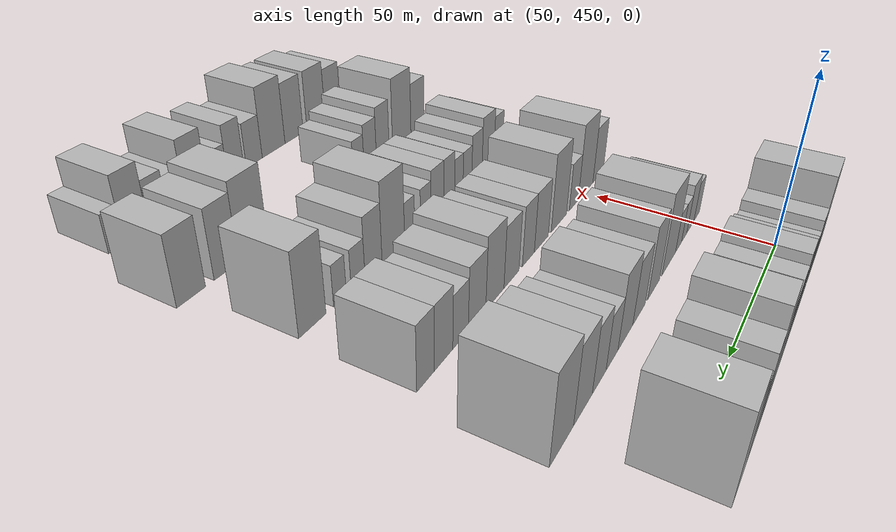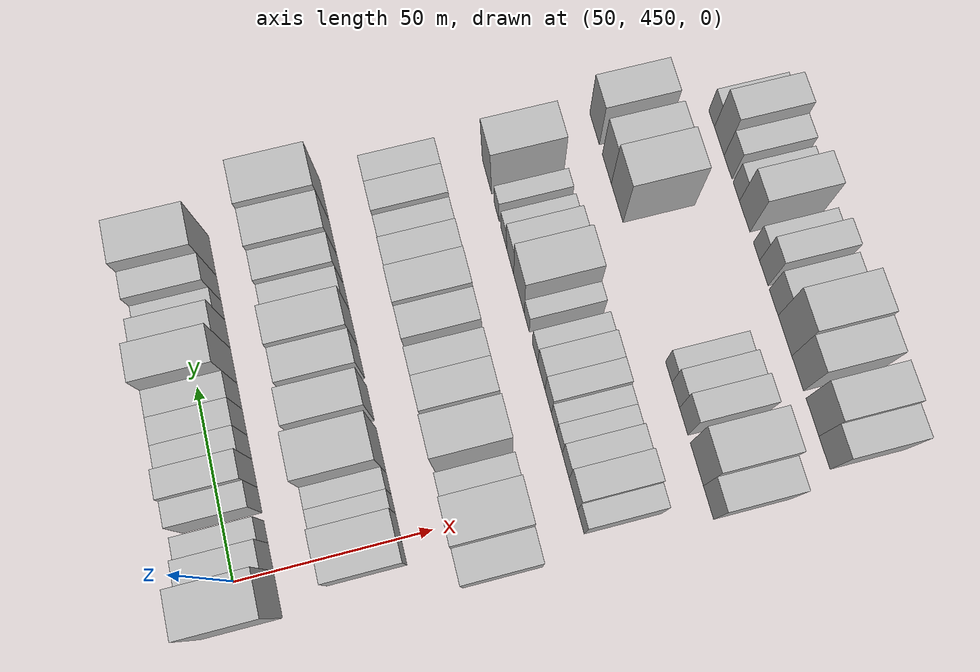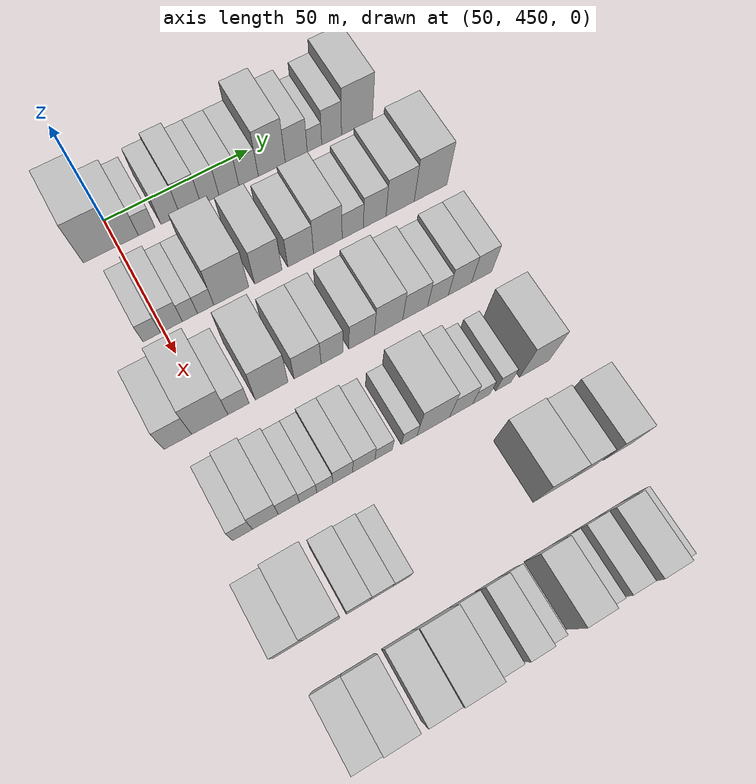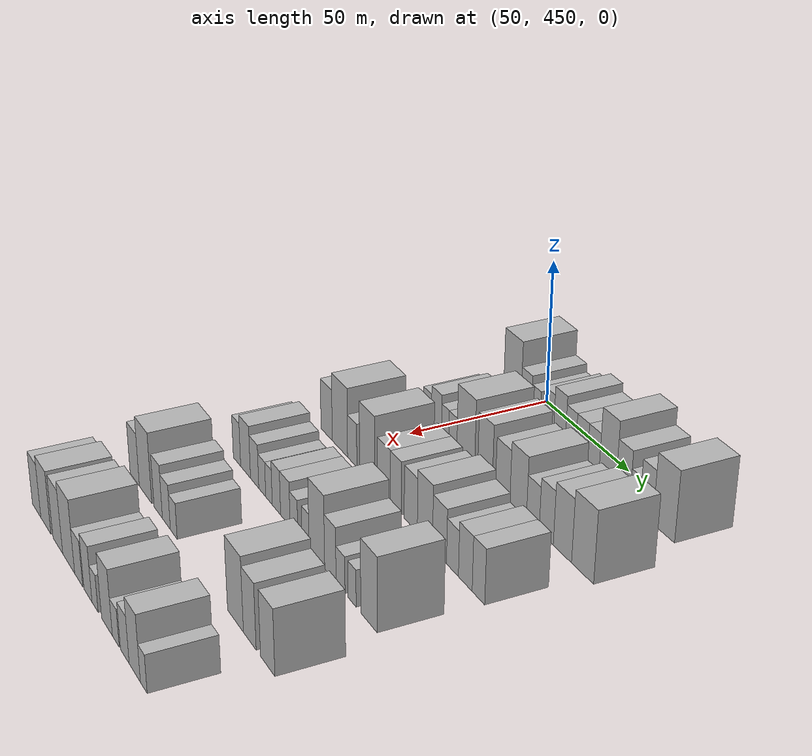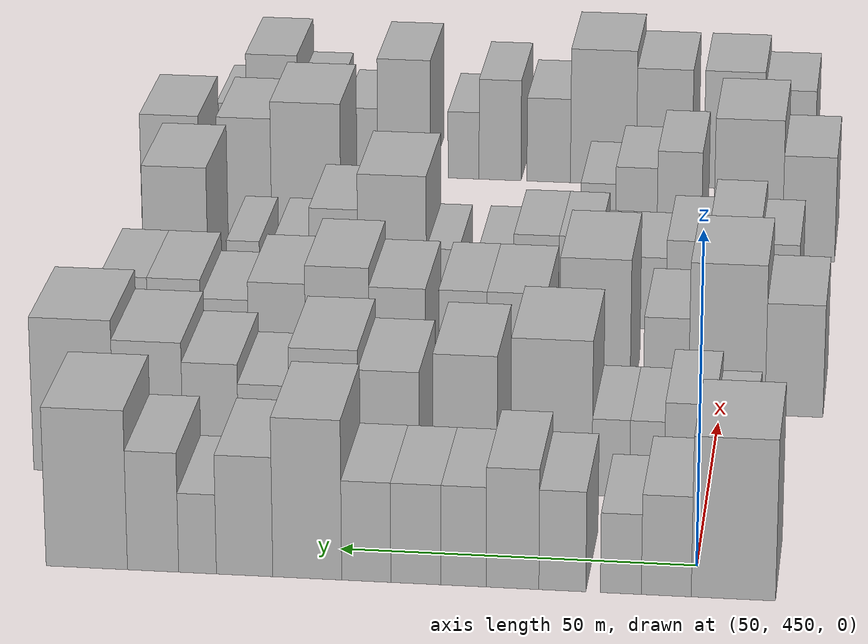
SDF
<sdf version="1.6">
 <world name="default">
  <model name="building_112">
   <static>1</static>
   <pose>50.0000 444.3973 0 0.000000 0.000000 0.000000</pose>
   <link name="link">
    <pose>0 0 12.00 0 0 0</pose>
    <collision name="collision"><geometry><box><size>20.0000 11.5505 24.0000</size></box></geometry></collision>
    <visual name="visual">
     <cast_shadows>0</cast_shadows>
     <geometry><box><size>20.0000 11.5505 24.0000</size></box></geometry>
     <material>
      <script>
       <uri>model://HANNAS_wall/materials/scripts</uri>
       <uri>model://HANNAS_wall/materials/textures</uri>
       <name>vrc/HANNAS_wall</name>
      </script>
     </material>
    </visual>
   </link>
  </model>
  <model name="building_113">
   <static>1</static>
   <pose>50.0000 453.6075 0 0.000000 0.000000 0.000000</pose>
   <link name="link">
    <pose>0 0 7.50 0 0 0</pose>
    <collision name="collision"><geometry><box><size>20.0000 6.8697 15.0000</size></box></geometry></collision>
    <visual name="visual">
     <cast_shadows>0</cast_shadows>
     <geometry><box><size>20.0000 6.8697 15.0000</size></box></geometry>
     <material>
      <script>
       <uri>model://HANNAS_wall/materials/scripts</uri>
       <uri>model://HANNAS_wall/materials/textures</uri>
       <name>vrc/HANNAS_wall</name>
      </script>
     </material>
    </visual>
   </link>
  </model>
  <model name="building_114">
   <static>1</static>
   <pose>50.0000 459.8554 0 0.000000 0.000000 0.000000</pose>
   <link name="link">
    <pose>0 0 6.00 0 0 0</pose>
    <collision name="collision"><geometry><box><size>20.0000 5.6261 12.0000</size></box></geometry></collision>
    <visual name="visual">
     <cast_shadows>0</cast_shadows>
     <geometry><box><size>20.0000 5.6261 12.0000</size></box></geometry>
     <material>
      <script>
       <uri>model://HANNAS_wall/materials/scripts</uri>
       <uri>model://HANNAS_wall/materials/textures</uri>
       <name>vrc/HANNAS_wall</name>
      </script>
     </material>
    </visual>
   </link>
  </model>
  <model name="building_115">
   <static>1</static>
   <pose>50.0000 467.9086 0 0.000000 0.000000 0.000000</pose>
   <link name="link">
    <pose>0 0 7.50 0 0 0</pose>
    <collision name="collision"><geometry><box><size>20.0000 6.4802 15.0000</size></box></geometry></collision>
    <visual name="visual">
     <cast_shadows>0</cast_shadows>
     <geometry><box><size>20.0000 6.4802 15.0000</size></box></geometry>
     <material>
      <script>
       <uri>model://HANNAS_wall/materials/scripts</uri>
       <uri>model://HANNAS_wall/materials/textures</uri>
       <name>vrc/HANNAS_wall</name>
      </script>
     </material>
    </visual>
   </link>
  </model>
  <model name="building_116">
   <static>1</static>
   <pose>50.0000 474.7819 0 0.000000 0.000000 0.000000</pose>
   <link name="link">
    <pose>0 0 9.00 0 0 0</pose>
    <collision name="collision"><geometry><box><size>20.0000 7.2665 18.0000</size></box></geometry></collision>
    <visual name="visual">
     <cast_shadows>0</cast_shadows>
     <geometry><box><size>20.0000 7.2665 18.0000</size></box></geometry>
     <material>
      <script>
       <uri>model://HANNAS_wall/materials/scripts</uri>
       <uri>model://HANNAS_wall/materials/textures</uri>
       <name>vrc/HANNAS_wall</name>
      </script>
     </material>
    </visual>
   </link>
  </model>
  <model name="building_117">
   <static>1</static>
   <pose>50.0000 481.5514 0 0.000000 0.000000 0.000000</pose>
   <link name="link">
    <pose>0 0 7.50 0 0 0</pose>
    <collision name="collision"><geometry><box><size>20.0000 6.2723 15.0000</size></box></geometry></collision>
    <visual name="visual">
     <cast_shadows>0</cast_shadows>
     <geometry><box><size>20.0000 6.2723 15.0000</size></box></geometry>
     <material>
      <script>
       <uri>model://HANNAS_wall/materials/scripts</uri>
       <uri>model://HANNAS_wall/materials/textures</uri>
       <name>vrc/HANNAS_wall</name>
      </script>
     </material>
    </visual>
   </link>
  </model>
  <model name="building_118">
   <static>1</static>
   <pose>50.0000 488.1809 0 0.000000 0.000000 0.000000</pose>
   <link name="link">
    <pose>0 0 7.50 0 0 0</pose>
    <collision name="collision"><geometry><box><size>20.0000 6.9867 15.0000</size></box></geometry></collision>
    <visual name="visual">
     <cast_shadows>0</cast_shadows>
     <geometry><box><size>20.0000 6.9867 15.0000</size></box></geometry>
     <material>
      <script>
       <uri>model://HANNAS_wall/materials/scripts</uri>
       <uri>model://HANNAS_wall/materials/textures</uri>
       <name>vrc/HANNAS_wall</name>
      </script>
     </material>
    </visual>
   </link>
  </model>
  <model name="building_119">
   <static>1</static>
   <pose>50.0000 495.0947 0 0.000000 0.000000 0.000000</pose>
   <link name="link">
    <pose>0 0 7.50 0 0 0</pose>
    <collision name="collision"><geometry><box><size>20.0000 6.8410 15.0000</size></box></geometry></collision>
    <visual name="visual">
     <cast_shadows>0</cast_shadows>
     <geometry><box><size>20.0000 6.8410 15.0000</size></box></geometry>
     <material>
      <script>
       <uri>model://HANNAS_wall/materials/scripts</uri>
       <uri>model://HANNAS_wall/materials/textures</uri>
       <name>vrc/HANNAS_wall</name>
      </script>
     </material>
    </visual>
   </link>
  </model>
  <model name="building_120">
   <static>1</static>
   <pose>50.0000 503.3246 0 0.000000 0.000000 0.000000</pose>
   <link name="link">
    <pose>0 0 12.00 0 0 0</pose>
    <collision name="collision"><geometry><box><size>20.0000 9.6187 24.0000</size></box></geometry></collision>
    <visual name="visual">
     <cast_shadows>0</cast_shadows>
     <geometry><box><size>20.0000 9.6187 24.0000</size></box></geometry>
     <material>
      <script>
       <uri>model://HANNAS_wall/materials/scripts</uri>
       <uri>model://HANNAS_wall/materials/textures</uri>
       <name>vrc/HANNAS_wall</name>
      </script>
     </material>
    </visual>
   </link>
  </model>
  <model name="building_121">
   <static>1</static>
   <pose>50.0000 512.0854 0 0.000000 0.000000 0.000000</pose>
   <link name="link">
    <pose>0 0 9.00 0 0 0</pose>
    <collision name="collision"><geometry><box><size>20.0000 7.9030 18.0000</size></box></geometry></collision>
    <visual name="visual">
     <cast_shadows>0</cast_shadows>
     <geometry><box><size>20.0000 7.9030 18.0000</size></box></geometry>
     <material>
      <script>
       <uri>model://HANNAS_wall/materials/scripts</uri>
       <uri>model://HANNAS_wall/materials/textures</uri>
       <name>vrc/HANNAS_wall</name>
      </script>
     </material>
    </visual>
   </link>
  </model>
  <model name="building_122">
   <static>1</static>
   <pose>50.0000 518.6824 0 0.000000 0.000000 0.000000</pose>
   <link name="link">
    <pose>0 0 6.00 0 0 0</pose>
    <collision name="collision"><geometry><box><size>20.0000 5.2909 12.0000</size></box></geometry></collision>
    <visual name="visual">
     <cast_shadows>0</cast_shadows>
     <geometry><box><size>20.0000 5.2909 12.0000</size></box></geometry>
     <material>
      <script>
       <uri>model://HANNAS_wall/materials/scripts</uri>
       <uri>model://HANNAS_wall/materials/textures</uri>
       <name>vrc/HANNAS_wall</name>
      </script>
     </material>
    </visual>
   </link>
  </model>
  <model name="building_123">
   <static>1</static>
   <pose>50.0000 524.9318 0 0.000000 0.000000 0.000000</pose>
   <link name="link">
    <pose>0 0 9.00 0 0 0</pose>
    <collision name="collision"><geometry><box><size>20.0000 7.2080 18.0000</size></box></geometry></collision>
    <visual name="visual">
     <cast_shadows>0</cast_shadows>
     <geometry><box><size>20.0000 7.2080 18.0000</size></box></geometry>
     <material>
      <script>
       <uri>model://HANNAS_wall/materials/scripts</uri>
       <uri>model://HANNAS_wall/materials/textures</uri>
       <name>vrc/HANNAS_wall</name>
      </script>
     </material>
    </visual>
   </link>
  </model>
  <model name="building_124">
   <static>1</static>
   <pose>50.0000 534.2713 0 0.000000 0.000000 0.000000</pose>
   <link name="link">
    <pose>0 0 12.00 0 0 0</pose>
    <collision name="collision"><geometry><box><size>20.0000 11.4708 24.0000</size></box></geometry></collision>
    <visual name="visual">
     <cast_shadows>0</cast_shadows>
     <geometry><box><size>20.0000 11.4708 24.0000</size></box></geometry>
     <material>
      <script>
       <uri>model://HANNAS_wall/materials/scripts</uri>
       <uri>model://HANNAS_wall/materials/textures</uri>
       <name>vrc/HANNAS_wall</name>
      </script>
     </material>
    </visual>
   </link>
  </model>
  <model name="building_225">
   <static>1</static>
   <pose>82.0000 446.1911 0 0.000000 0.000000 0.000000</pose>
   <link name="link">
    <pose>0 0 6.00 0 0 0</pose>
    <collision name="collision"><geometry><box><size>20.0000 5.7299 12.0000</size></box></geometry></collision>
    <visual name="visual">
     <cast_shadows>0</cast_shadows>
     <geometry><box><size>20.0000 5.7299 12.0000</size></box></geometry>
     <material>
      <script>
       <uri>model://HANNAS_wall/materials/scripts</uri>
       <uri>model://HANNAS_wall/materials/textures</uri>
       <name>vrc/HANNAS_wall</name>
      </script>
     </material>
    </visual>
   </link>
  </model>
  <model name="building_226">
   <static>1</static>
   <pose>82.0000 452.6081 0 0.000000 0.000000 0.000000</pose>
   <link name="link">
    <pose>0 0 7.50 0 0 0</pose>
    <collision name="collision"><geometry><box><size>20.0000 7.1041 15.0000</size></box></geometry></collision>
    <visual name="visual">
     <cast_shadows>0</cast_shadows>
     <geometry><box><size>20.0000 7.1041 15.0000</size></box></geometry>
     <material>
      <script>
       <uri>model://HANNAS_wall/materials/scripts</uri>
       <uri>model://HANNAS_wall/materials/textures</uri>
       <name>vrc/HANNAS_wall</name>
      </script>
     </material>
    </visual>
   </link>
  </model>
  <model name="building_227">
   <static>1</static>
   <pose>82.0000 458.6469 0 0.000000 0.000000 0.000000</pose>
   <link name="link">
    <pose>0 0 6.00 0 0 0</pose>
    <collision name="collision"><geometry><box><size>20.0000 4.9734 12.0000</size></box></geometry></collision>
    <visual name="visual">
     <cast_shadows>0</cast_shadows>
     <geometry><box><size>20.0000 4.9734 12.0000</size></box></geometry>
     <material>
      <script>
       <uri>model://HANNAS_wall/materials/scripts</uri>
       <uri>model://HANNAS_wall/materials/textures</uri>
       <name>vrc/HANNAS_wall</name>
      </script>
     </material>
    </visual>
   </link>
  </model>
  <model name="building_228">
   <static>1</static>
   <pose>82.0000 463.8557 0 0.000000 0.000000 0.000000</pose>
   <link name="link">
    <pose>0 0 6.00 0 0 0</pose>
    <collision name="collision"><geometry><box><size>20.0000 5.4442 12.0000</size></box></geometry></collision>
    <visual name="visual">
     <cast_shadows>0</cast_shadows>
     <geometry><box><size>20.0000 5.4442 12.0000</size></box></geometry>
     <material>
      <script>
       <uri>model://HANNAS_wall/materials/scripts</uri>
       <uri>model://HANNAS_wall/materials/textures</uri>
       <name>vrc/HANNAS_wall</name>
      </script>
     </material>
    </visual>
   </link>
  </model>
  <model name="building_229">
   <static>1</static>
   <pose>82.0000 472.4345 0 0.000000 0.000000 0.000000</pose>
   <link name="link">
    <pose>0 0 12.00 0 0 0</pose>
    <collision name="collision"><geometry><box><size>20.0000 11.7135 24.0000</size></box></geometry></collision>
    <visual name="visual">
     <cast_shadows>0</cast_shadows>
     <geometry><box><size>20.0000 11.7135 24.0000</size></box></geometry>
     <material>
      <script>
       <uri>model://HANNAS_wall/materials/scripts</uri>
       <uri>model://HANNAS_wall/materials/textures</uri>
       <name>vrc/HANNAS_wall</name>
      </script>
     </material>
    </visual>
   </link>
  </model>
  <model name="building_230">
   <static>1</static>
   <pose>82.0000 484.9428 0 0.000000 0.000000 0.000000</pose>
   <link name="link">
    <pose>0 0 10.50 0 0 0</pose>
    <collision name="collision"><geometry><box><size>20.0000 9.3031 21.0000</size></box></geometry></collision>
    <visual name="visual">
     <cast_shadows>0</cast_shadows>
     <geometry><box><size>20.0000 9.3031 21.0000</size></box></geometry>
     <material>
      <script>
       <uri>model://HANNAS_wall/materials/scripts</uri>
       <uri>model://HANNAS_wall/materials/textures</uri>
       <name>vrc/HANNAS_wall</name>
      </script>
     </material>
    </visual>
   </link>
  </model>
  <model name="building_231">
   <static>1</static>
   <pose>82.0000 496.0306 0 0.000000 0.000000 0.000000</pose>
   <link name="link">
    <pose>0 0 9.00 0 0 0</pose>
    <collision name="collision"><geometry><box><size>20.0000 8.8725 18.0000</size></box></geometry></collision>
    <visual name="visual">
     <cast_shadows>0</cast_shadows>
     <geometry><box><size>20.0000 8.8725 18.0000</size></box></geometry>
     <material>
      <script>
       <uri>model://HANNAS_wall/materials/scripts</uri>
       <uri>model://HANNAS_wall/materials/textures</uri>
       <name>vrc/HANNAS_wall</name>
      </script>
     </material>
    </visual>
   </link>
  </model>
  <model name="building_232">
   <static>1</static>
   <pose>82.0000 505.4651 0 0.000000 0.000000 0.000000</pose>
   <link name="link">
    <pose>0 0 10.50 0 0 0</pose>
    <collision name="collision"><geometry><box><size>20.0000 9.9965 21.0000</size></box></geometry></collision>
    <visual name="visual">
     <cast_shadows>0</cast_shadows>
     <geometry><box><size>20.0000 9.9965 21.0000</size></box></geometry>
     <material>
      <script>
       <uri>model://HANNAS_wall/materials/scripts</uri>
       <uri>model://HANNAS_wall/materials/textures</uri>
       <name>vrc/HANNAS_wall</name>
      </script>
     </material>
    </visual>
   </link>
  </model>
  <model name="building_233">
   <static>1</static>
   <pose>82.0000 514.1945 0 0.000000 0.000000 0.000000</pose>
   <link name="link">
    <pose>0 0 7.50 0 0 0</pose>
    <collision name="collision"><geometry><box><size>20.0000 7.4623 15.0000</size></box></geometry></collision>
    <visual name="visual">
     <cast_shadows>0</cast_shadows>
     <geometry><box><size>20.0000 7.4623 15.0000</size></box></geometry>
     <material>
      <script>
       <uri>model://HANNAS_wall/materials/scripts</uri>
       <uri>model://HANNAS_wall/materials/textures</uri>
       <name>vrc/HANNAS_wall</name>
      </script>
     </material>
    </visual>
   </link>
  </model>
  <model name="building_234">
   <static>1</static>
   <pose>82.0000 521.9834 0 0.000000 0.000000 0.000000</pose>
   <link name="link">
    <pose>0 0 9.00 0 0 0</pose>
    <collision name="collision"><geometry><box><size>20.0000 8.1156 18.0000</size></box></geometry></collision>
    <visual name="visual">
     <cast_shadows>0</cast_shadows>
     <geometry><box><size>20.0000 8.1156 18.0000</size></box></geometry>
     <material>
      <script>
       <uri>model://HANNAS_wall/materials/scripts</uri>
       <uri>model://HANNAS_wall/materials/textures</uri>
       <name>vrc/HANNAS_wall</name>
      </script>
     </material>
    </visual>
   </link>
  </model>
  <model name="building_235">
   <static>1</static>
   <pose>82.0000 531.1377 0 0.000000 0.000000 0.000000</pose>
   <link name="link">
    <pose>0 0 10.50 0 0 0</pose>
    <collision name="collision"><geometry><box><size>20.0000 10.1928 21.0000</size></box></geometry></collision>
    <visual name="visual">
     <cast_shadows>0</cast_shadows>
     <geometry><box><size>20.0000 10.1928 21.0000</size></box></geometry>
     <material>
      <script>
       <uri>model://HANNAS_wall/materials/scripts</uri>
       <uri>model://HANNAS_wall/materials/textures</uri>
       <name>vrc/HANNAS_wall</name>
      </script>
     </material>
    </visual>
   </link>
  </model>
  <model name="building_236">
   <static>1</static>
   <pose>82.0000 542.2051 0 0.000000 0.000000 0.000000</pose>
   <link name="link">
    <pose>0 0 12.00 0 0 0</pose>
    <collision name="collision"><geometry><box><size>20.0000 11.9421 24.0000</size></box></geometry></collision>
    <visual name="visual">
     <cast_shadows>0</cast_shadows>
     <geometry><box><size>20.0000 11.9421 24.0000</size></box></geometry>
     <material>
      <script>
       <uri>model://HANNAS_wall/materials/scripts</uri>
       <uri>model://HANNAS_wall/materials/textures</uri>
       <name>vrc/HANNAS_wall</name>
      </script>
     </material>
    </visual>
   </link>
  </model>
  <model name="building_342">
   <static>1</static>
   <pose>114.0000 438.9332 0 0.000000 0.000000 0.000000</pose>
   <link name="link">
    <pose>0 0 9.00 0 0 0</pose>
    <collision name="collision"><geometry><box><size>20.0000 8.6903 18.0000</size></box></geometry></collision>
    <visual name="visual">
     <cast_shadows>0</cast_shadows>
     <geometry><box><size>20.0000 8.6903 18.0000</size></box></geometry>
     <material>
      <script>
       <uri>model://HANNAS_wall/materials/scripts</uri>
       <uri>model://HANNAS_wall/materials/textures</uri>
       <name>vrc/HANNAS_wall</name>
      </script>
     </material>
    </visual>
   </link>
  </model>
  <model name="building_343">
   <static>1</static>
   <pose>114.0000 449.0209 0 0.000000 0.000000 0.000000</pose>
   <link name="link">
    <pose>0 0 12.00 0 0 0</pose>
    <collision name="collision"><geometry><box><size>20.0000 11.4851 24.0000</size></box></geometry></collision>
    <visual name="visual">
     <cast_shadows>0</cast_shadows>
     <geometry><box><size>20.0000 11.4851 24.0000</size></box></geometry>
     <material>
      <script>
       <uri>model://HANNAS_wall/materials/scripts</uri>
       <uri>model://HANNAS_wall/materials/textures</uri>
       <name>vrc/HANNAS_wall</name>
      </script>
     </material>
    </visual>
   </link>
  </model>
  <model name="building_344">
   <static>1</static>
   <pose>114.0000 458.1602 0 0.000000 0.000000 0.000000</pose>
   <link name="link">
    <pose>0 0 7.50 0 0 0</pose>
    <collision name="collision"><geometry><box><size>20.0000 6.7935 15.0000</size></box></geometry></collision>
    <visual name="visual">
     <cast_shadows>0</cast_shadows>
     <geometry><box><size>20.0000 6.7935 15.0000</size></box></geometry>
     <material>
      <script>
       <uri>model://HANNAS_wall/materials/scripts</uri>
       <uri>model://HANNAS_wall/materials/textures</uri>
       <name>vrc/HANNAS_wall</name>
      </script>
     </material>
    </visual>
   </link>
  </model>
  <model name="building_345">
   <static>1</static>
   <pose>114.0000 468.8801 0 0.000000 0.000000 0.000000</pose>
   <link name="link">
    <pose>0 0 12.00 0 0 0</pose>
    <collision name="collision"><geometry><box><size>20.0000 10.6462 24.0000</size></box></geometry></collision>
    <visual name="visual">
     <cast_shadows>0</cast_shadows>
     <geometry><box><size>20.0000 10.6462 24.0000</size></box></geometry>
     <material>
      <script>
       <uri>model://HANNAS_wall/materials/scripts</uri>
       <uri>model://HANNAS_wall/materials/textures</uri>
       <name>vrc/HANNAS_wall</name>
      </script>
     </material>
    </visual>
   </link>
  </model>
  <model name="building_346">
   <static>1</static>
   <pose>114.0000 480.6789 0 0.000000 0.000000 0.000000</pose>
   <link name="link">
    <pose>0 0 9.00 0 0 0</pose>
    <collision name="collision"><geometry><box><size>20.0000 8.9515 18.0000</size></box></geometry></collision>
    <visual name="visual">
     <cast_shadows>0</cast_shadows>
     <geometry><box><size>20.0000 8.9515 18.0000</size></box></geometry>
     <material>
      <script>
       <uri>model://HANNAS_wall/materials/scripts</uri>
       <uri>model://HANNAS_wall/materials/textures</uri>
       <name>vrc/HANNAS_wall</name>
      </script>
     </material>
    </visual>
   </link>
  </model>
  <model name="building_347">
   <static>1</static>
   <pose>114.0000 488.8079 0 0.000000 0.000000 0.000000</pose>
   <link name="link">
    <pose>0 0 9.00 0 0 0</pose>
    <collision name="collision"><geometry><box><size>20.0000 7.3066 18.0000</size></box></geometry></collision>
    <visual name="visual">
     <cast_shadows>0</cast_shadows>
     <geometry><box><size>20.0000 7.3066 18.0000</size></box></geometry>
     <material>
      <script>
       <uri>model://HANNAS_wall/materials/scripts</uri>
       <uri>model://HANNAS_wall/materials/textures</uri>
       <name>vrc/HANNAS_wall</name>
      </script>
     </material>
    </visual>
   </link>
  </model>
  <model name="building_348">
   <static>1</static>
   <pose>114.0000 498.7531 0 0.000000 0.000000 0.000000</pose>
   <link name="link">
    <pose>0 0 9.00 0 0 0</pose>
    <collision name="collision"><geometry><box><size>20.0000 8.5837 18.0000</size></box></geometry></collision>
    <visual name="visual">
     <cast_shadows>0</cast_shadows>
     <geometry><box><size>20.0000 8.5837 18.0000</size></box></geometry>
     <material>
      <script>
       <uri>model://HANNAS_wall/materials/scripts</uri>
       <uri>model://HANNAS_wall/materials/textures</uri>
       <name>vrc/HANNAS_wall</name>
      </script>
     </material>
    </visual>
   </link>
  </model>
  <model name="building_349">
   <static>1</static>
   <pose>114.0000 507.8823 0 0.000000 0.000000 0.000000</pose>
   <link name="link">
    <pose>0 0 10.50 0 0 0</pose>
    <collision name="collision"><geometry><box><size>20.0000 9.6748 21.0000</size></box></geometry></collision>
    <visual name="visual">
     <cast_shadows>0</cast_shadows>
     <geometry><box><size>20.0000 9.6748 21.0000</size></box></geometry>
     <material>
      <script>
       <uri>model://HANNAS_wall/materials/scripts</uri>
       <uri>model://HANNAS_wall/materials/textures</uri>
       <name>vrc/HANNAS_wall</name>
      </script>
     </material>
    </visual>
   </link>
  </model>
  <model name="building_350">
   <static>1</static>
   <pose>114.0000 517.0634 0 0.000000 0.000000 0.000000</pose>
   <link name="link">
    <pose>0 0 9.00 0 0 0</pose>
    <collision name="collision"><geometry><box><size>20.0000 8.6875 18.0000</size></box></geometry></collision>
    <visual name="visual">
     <cast_shadows>0</cast_shadows>
     <geometry><box><size>20.0000 8.6875 18.0000</size></box></geometry>
     <material>
      <script>
       <uri>model://HANNAS_wall/materials/scripts</uri>
       <uri>model://HANNAS_wall/materials/textures</uri>
       <name>vrc/HANNAS_wall</name>
      </script>
     </material>
    </visual>
   </link>
  </model>
  <model name="building_351">
   <static>1</static>
   <pose>114.0000 525.0211 0 0.000000 0.000000 0.000000</pose>
   <link name="link">
    <pose>0 0 7.50 0 0 0</pose>
    <collision name="collision"><geometry><box><size>20.0000 7.2279 15.0000</size></box></geometry></collision>
    <visual name="visual">
     <cast_shadows>0</cast_shadows>
     <geometry><box><size>20.0000 7.2279 15.0000</size></box></geometry>
     <material>
      <script>
       <uri>model://HANNAS_wall/materials/scripts</uri>
       <uri>model://HANNAS_wall/materials/textures</uri>
       <name>vrc/HANNAS_wall</name>
      </script>
     </material>
    </visual>
   </link>
  </model>
  <model name="building_352">
   <static>1</static>
   <pose>114.0000 532.7047 0 0.000000 0.000000 0.000000</pose>
   <link name="link">
    <pose>0 0 9.00 0 0 0</pose>
    <collision name="collision"><geometry><box><size>20.0000 8.1392 18.0000</size></box></geometry></collision>
    <visual name="visual">
     <cast_shadows>0</cast_shadows>
     <geometry><box><size>20.0000 8.1392 18.0000</size></box></geometry>
     <material>
      <script>
       <uri>model://HANNAS_wall/materials/scripts</uri>
       <uri>model://HANNAS_wall/materials/textures</uri>
       <name>vrc/HANNAS_wall</name>
      </script>
     </material>
    </visual>
   </link>
  </model>
  <model name="building_353">
   <static>1</static>
   <pose>114.0000 540.4017 0 0.000000 0.000000 0.000000</pose>
   <link name="link">
    <pose>0 0 9.00 0 0 0</pose>
    <collision name="collision"><geometry><box><size>20.0000 7.2548 18.0000</size></box></geometry></collision>
    <visual name="visual">
     <cast_shadows>0</cast_shadows>
     <geometry><box><size>20.0000 7.2548 18.0000</size></box></geometry>
     <material>
      <script>
       <uri>model://HANNAS_wall/materials/scripts</uri>
       <uri>model://HANNAS_wall/materials/textures</uri>
       <name>vrc/HANNAS_wall</name>
      </script>
     </material>
    </visual>
   </link>
  </model>
  <model name="building_462">
   <static>1</static>
   <pose>146.0000 442.7421 0 0.000000 0.000000 0.000000</pose>
   <link name="link">
    <pose>0 0 7.50 0 0 0</pose>
    <collision name="collision"><geometry><box><size>20.0000 6.0566 15.0000</size></box></geometry></collision>
    <visual name="visual">
     <cast_shadows>0</cast_shadows>
     <geometry><box><size>20.0000 6.0566 15.0000</size></box></geometry>
     <material>
      <script>
       <uri>model://HANNAS_wall/materials/scripts</uri>
       <uri>model://HANNAS_wall/materials/textures</uri>
       <name>vrc/HANNAS_wall</name>
      </script>
     </material>
    </visual>
   </link>
  </model>
  <model name="building_463">
   <static>1</static>
   <pose>146.0000 449.7746 0 0.000000 0.000000 0.000000</pose>
   <link name="link">
    <pose>0 0 9.00 0 0 0</pose>
    <collision name="collision"><geometry><box><size>20.0000 8.0084 18.0000</size></box></geometry></collision>
    <visual name="visual">
     <cast_shadows>0</cast_shadows>
     <geometry><box><size>20.0000 8.0084 18.0000</size></box></geometry>
     <material>
      <script>
       <uri>model://HANNAS_wall/materials/scripts</uri>
       <uri>model://HANNAS_wall/materials/textures</uri>
       <name>vrc/HANNAS_wall</name>
      </script>
     </material>
    </visual>
   </link>
  </model>
  <model name="building_464">
   <static>1</static>
   <pose>146.0000 457.0858 0 0.000000 0.000000 0.000000</pose>
   <link name="link">
    <pose>0 0 7.50 0 0 0</pose>
    <collision name="collision"><geometry><box><size>20.0000 6.6140 15.0000</size></box></geometry></collision>
    <visual name="visual">
     <cast_shadows>0</cast_shadows>
     <geometry><box><size>20.0000 6.6140 15.0000</size></box></geometry>
     <material>
      <script>
       <uri>model://HANNAS_wall/materials/scripts</uri>
       <uri>model://HANNAS_wall/materials/textures</uri>
       <name>vrc/HANNAS_wall</name>
      </script>
     </material>
    </visual>
   </link>
  </model>
  <model name="building_465">
   <static>1</static>
   <pose>146.0000 463.1231 0 0.000000 0.000000 0.000000</pose>
   <link name="link">
    <pose>0 0 6.00 0 0 0</pose>
    <collision name="collision"><geometry><box><size>20.0000 5.4606 12.0000</size></box></geometry></collision>
    <visual name="visual">
     <cast_shadows>0</cast_shadows>
     <geometry><box><size>20.0000 5.4606 12.0000</size></box></geometry>
     <material>
      <script>
       <uri>model://HANNAS_wall/materials/scripts</uri>
       <uri>model://HANNAS_wall/materials/textures</uri>
       <name>vrc/HANNAS_wall</name>
      </script>
     </material>
    </visual>
   </link>
  </model>
  <model name="building_466">
   <static>1</static>
   <pose>146.0000 468.3838 0 0.000000 0.000000 0.000000</pose>
   <link name="link">
    <pose>0 0 6.00 0 0 0</pose>
    <collision name="collision"><geometry><box><size>20.0000 5.0609 12.0000</size></box></geometry></collision>
    <visual name="visual">
     <cast_shadows>0</cast_shadows>
     <geometry><box><size>20.0000 5.0609 12.0000</size></box></geometry>
     <material>
      <script>
       <uri>model://HANNAS_wall/materials/scripts</uri>
       <uri>model://HANNAS_wall/materials/textures</uri>
       <name>vrc/HANNAS_wall</name>
      </script>
     </material>
    </visual>
   </link>
  </model>
  <model name="building_467">
   <static>1</static>
   <pose>146.0000 474.0808 0 0.000000 0.000000 0.000000</pose>
   <link name="link">
    <pose>0 0 7.50 0 0 0</pose>
    <collision name="collision"><geometry><box><size>20.0000 6.3331 15.0000</size></box></geometry></collision>
    <visual name="visual">
     <cast_shadows>0</cast_shadows>
     <geometry><box><size>20.0000 6.3331 15.0000</size></box></geometry>
     <material>
      <script>
       <uri>model://HANNAS_wall/materials/scripts</uri>
       <uri>model://HANNAS_wall/materials/textures</uri>
       <name>vrc/HANNAS_wall</name>
      </script>
     </material>
    </visual>
   </link>
  </model>
  <model name="building_468">
   <static>1</static>
   <pose>146.0000 480.7989 0 0.000000 0.000000 0.000000</pose>
   <link name="link">
    <pose>0 0 7.50 0 0 0</pose>
    <collision name="collision"><geometry><box><size>20.0000 7.1032 15.0000</size></box></geometry></collision>
    <visual name="visual">
     <cast_shadows>0</cast_shadows>
     <geometry><box><size>20.0000 7.1032 15.0000</size></box></geometry>
     <material>
      <script>
       <uri>model://HANNAS_wall/materials/scripts</uri>
       <uri>model://HANNAS_wall/materials/textures</uri>
       <name>vrc/HANNAS_wall</name>
      </script>
     </material>
    </visual>
   </link>
  </model>
  <model name="building_469">
   <static>1</static>
   <pose>146.0000 487.1890 0 0.000000 0.000000 0.000000</pose>
   <link name="link">
    <pose>0 0 6.00 0 0 0</pose>
    <collision name="collision"><geometry><box><size>20.0000 5.6771 12.0000</size></box></geometry></collision>
    <visual name="visual">
     <cast_shadows>0</cast_shadows>
     <geometry><box><size>20.0000 5.6771 12.0000</size></box></geometry>
     <material>
      <script>
       <uri>model://HANNAS_wall/materials/scripts</uri>
       <uri>model://HANNAS_wall/materials/textures</uri>
       <name>vrc/HANNAS_wall</name>
      </script>
     </material>
    </visual>
   </link>
  </model>
  <model name="building_470">
   <static>1</static>
   <pose>146.0000 495.5959 0 0.000000 0.000000 0.000000</pose>
   <link name="link">
    <pose>0 0 6.00 0 0 0</pose>
    <collision name="collision"><geometry><box><size>20.0000 5.1367 12.0000</size></box></geometry></collision>
    <visual name="visual">
     <cast_shadows>0</cast_shadows>
     <geometry><box><size>20.0000 5.1367 12.0000</size></box></geometry>
     <material>
      <script>
       <uri>model://HANNAS_wall/materials/scripts</uri>
       <uri>model://HANNAS_wall/materials/textures</uri>
       <name>vrc/HANNAS_wall</name>
      </script>
     </material>
    </visual>
   </link>
  </model>
  <model name="building_471">
   <static>1</static>
   <pose>146.0000 503.5928 0 0.000000 0.000000 0.000000</pose>
   <link name="link">
    <pose>0 0 12.00 0 0 0</pose>
    <collision name="collision"><geometry><box><size>20.0000 10.8572 24.0000</size></box></geometry></collision>
    <visual name="visual">
     <cast_shadows>0</cast_shadows>
     <geometry><box><size>20.0000 10.8572 24.0000</size></box></geometry>
     <material>
      <script>
       <uri>model://HANNAS_wall/materials/scripts</uri>
       <uri>model://HANNAS_wall/materials/textures</uri>
       <name>vrc/HANNAS_wall</name>
      </script>
     </material>
    </visual>
   </link>
  </model>
  <model name="building_472">
   <static>1</static>
   <pose>146.0000 512.8680 0 0.000000 0.000000 0.000000</pose>
   <link name="link">
    <pose>0 0 9.00 0 0 0</pose>
    <collision name="collision"><geometry><box><size>20.0000 7.6932 18.0000</size></box></geometry></collision>
    <visual name="visual">
     <cast_shadows>0</cast_shadows>
     <geometry><box><size>20.0000 7.6932 18.0000</size></box></geometry>
     <material>
      <script>
       <uri>model://HANNAS_wall/materials/scripts</uri>
       <uri>model://HANNAS_wall/materials/textures</uri>
       <name>vrc/HANNAS_wall</name>
      </script>
     </material>
    </visual>
   </link>
  </model>
  <model name="building_473">
   <static>1</static>
   <pose>146.0000 519.6744 0 0.000000 0.000000 0.000000</pose>
   <link name="link">
    <pose>0 0 6.00 0 0 0</pose>
    <collision name="collision"><geometry><box><size>20.0000 5.9196 12.0000</size></box></geometry></collision>
    <visual name="visual">
     <cast_shadows>0</cast_shadows>
     <geometry><box><size>20.0000 5.9196 12.0000</size></box></geometry>
     <material>
      <script>
       <uri>model://HANNAS_wall/materials/scripts</uri>
       <uri>model://HANNAS_wall/materials/textures</uri>
       <name>vrc/HANNAS_wall</name>
      </script>
     </material>
    </visual>
   </link>
  </model>
  <model name="building_474">
   <static>1</static>
   <pose>146.0000 527.2561 0 0.000000 0.000000 0.000000</pose>
   <link name="link">
    <pose>0 0 6.00 0 0 0</pose>
    <collision name="collision"><geometry><box><size>20.0000 5.2438 12.0000</size></box></geometry></collision>
    <visual name="visual">
     <cast_shadows>0</cast_shadows>
     <geometry><box><size>20.0000 5.2438 12.0000</size></box></geometry>
     <material>
      <script>
       <uri>model://HANNAS_wall/materials/scripts</uri>
       <uri>model://HANNAS_wall/materials/textures</uri>
       <name>vrc/HANNAS_wall</name>
      </script>
     </material>
    </visual>
   </link>
  </model>
  <model name="building_475">
   <static>1</static>
   <pose>146.0000 538.0188 0 0.000000 0.000000 0.000000</pose>
   <link name="link">
    <pose>0 0 12.00 0 0 0</pose>
    <collision name="collision"><geometry><box><size>20.0000 10.2817 24.0000</size></box></geometry></collision>
    <visual name="visual">
     <cast_shadows>0</cast_shadows>
     <geometry><box><size>20.0000 10.2817 24.0000</size></box></geometry>
     <material>
      <script>
       <uri>model://HANNAS_wall/materials/scripts</uri>
       <uri>model://HANNAS_wall/materials/textures</uri>
       <name>vrc/HANNAS_wall</name>
      </script>
     </material>
    </visual>
   </link>
  </model>
  <model name="building_578">
   <static>1</static>
   <pose>178.0000 439.4084 0 0.000000 0.000000 0.000000</pose>
   <link name="link">
    <pose>0 0 9.00 0 0 0</pose>
    <collision name="collision"><geometry><box><size>20.0000 8.5494 18.0000</size></box></geometry></collision>
    <visual name="visual">
     <cast_shadows>0</cast_shadows>
     <geometry><box><size>20.0000 8.5494 18.0000</size></box></geometry>
     <material>
      <script>
       <uri>model://HANNAS_wall/materials/scripts</uri>
       <uri>model://HANNAS_wall/materials/textures</uri>
       <name>vrc/HANNAS_wall</name>
      </script>
     </material>
    </visual>
   </link>
  </model>
  <model name="building_579">
   <static>1</static>
   <pose>178.0000 449.2733 0 0.000000 0.000000 0.000000</pose>
   <link name="link">
    <pose>0 0 12.00 0 0 0</pose>
    <collision name="collision"><geometry><box><size>20.0000 11.1803 24.0000</size></box></geometry></collision>
    <visual name="visual">
     <cast_shadows>0</cast_shadows>
     <geometry><box><size>20.0000 11.1803 24.0000</size></box></geometry>
     <material>
      <script>
       <uri>model://HANNAS_wall/materials/scripts</uri>
       <uri>model://HANNAS_wall/materials/textures</uri>
       <name>vrc/HANNAS_wall</name>
      </script>
     </material>
    </visual>
   </link>
  </model>
  <model name="building_580">
   <static>1</static>
   <pose>178.0000 460.4961 0 0.000000 0.000000 0.000000</pose>
   <link name="link">
    <pose>0 0 9.00 0 0 0</pose>
    <collision name="collision"><geometry><box><size>20.0000 7.2652 18.0000</size></box></geometry></collision>
    <visual name="visual">
     <cast_shadows>0</cast_shadows>
     <geometry><box><size>20.0000 7.2652 18.0000</size></box></geometry>
     <material>
      <script>
       <uri>model://HANNAS_wall/materials/scripts</uri>
       <uri>model://HANNAS_wall/materials/textures</uri>
       <name>vrc/HANNAS_wall</name>
      </script>
     </material>
    </visual>
   </link>
  </model>
  <model name="building_581">
   <static>1</static>
   <pose>178.0000 467.5204 0 0.000000 0.000000 0.000000</pose>
   <link name="link">
    <pose>0 0 7.50 0 0 0</pose>
    <collision name="collision"><geometry><box><size>20.0000 6.7835 15.0000</size></box></geometry></collision>
    <visual name="visual">
     <cast_shadows>0</cast_shadows>
     <geometry><box><size>20.0000 6.7835 15.0000</size></box></geometry>
     <material>
      <script>
       <uri>model://HANNAS_wall/materials/scripts</uri>
       <uri>model://HANNAS_wall/materials/textures</uri>
       <name>vrc/HANNAS_wall</name>
      </script>
     </material>
    </visual>
   </link>
  </model>
  <model name="building_582">
   <static>1</static>
   <pose>178.0000 473.7671 0 0.000000 0.000000 0.000000</pose>
   <link name="link">
    <pose>0 0 6.00 0 0 0</pose>
    <collision name="collision"><geometry><box><size>20.0000 5.7097 12.0000</size></box></geometry></collision>
    <visual name="visual">
     <cast_shadows>0</cast_shadows>
     <geometry><box><size>20.0000 5.7097 12.0000</size></box></geometry>
     <material>
      <script>
       <uri>model://HANNAS_wall/materials/scripts</uri>
       <uri>model://HANNAS_wall/materials/textures</uri>
       <name>vrc/HANNAS_wall</name>
      </script>
     </material>
    </visual>
   </link>
  </model>
  <model name="building_583">
   <static>1</static>
   <pose>178.0000 521.8720 0 0.000000 0.000000 0.000000</pose>
   <link name="link">
    <pose>0 0 12.00 0 0 0</pose>
    <collision name="collision"><geometry><box><size>20.0000 11.5000 24.0000</size></box></geometry></collision>
    <visual name="visual">
     <cast_shadows>0</cast_shadows>
     <geometry><box><size>20.0000 11.5000 24.0000</size></box></geometry>
     <material>
      <script>
       <uri>model://HANNAS_wall/materials/scripts</uri>
       <uri>model://HANNAS_wall/materials/textures</uri>
       <name>vrc/HANNAS_wall</name>
      </script>
     </material>
    </visual>
   </link>
  </model>
  <model name="building_584">
   <static>1</static>
   <pose>178.0000 532.0764 0 0.000000 0.000000 0.000000</pose>
   <link name="link">
    <pose>0 0 10.50 0 0 0</pose>
    <collision name="collision"><geometry><box><size>20.0000 8.9089 21.0000</size></box></geometry></collision>
    <visual name="visual">
     <cast_shadows>0</cast_shadows>
     <geometry><box><size>20.0000 8.9089 21.0000</size></box></geometry>
     <material>
      <script>
       <uri>model://HANNAS_wall/materials/scripts</uri>
       <uri>model://HANNAS_wall/materials/textures</uri>
       <name>vrc/HANNAS_wall</name>
      </script>
     </material>
    </visual>
   </link>
  </model>
  <model name="building_585">
   <static>1</static>
   <pose>178.0000 544.3869 0 0.000000 0.000000 0.000000</pose>
   <link name="link">
    <pose>0 0 10.50 0 0 0</pose>
    <collision name="collision"><geometry><box><size>20.0000 9.7121 21.0000</size></box></geometry></collision>
    <visual name="visual">
     <cast_shadows>0</cast_shadows>
     <geometry><box><size>20.0000 9.7121 21.0000</size></box></geometry>
     <material>
      <script>
       <uri>model://HANNAS_wall/materials/scripts</uri>
       <uri>model://HANNAS_wall/materials/textures</uri>
       <name>vrc/HANNAS_wall</name>
      </script>
     </material>
    </visual>
   </link>
  </model>
  <model name="building_691">
   <static>1</static>
   <pose>210.0000 444.0174 0 0.000000 0.000000 0.000000</pose>
   <link name="link">
    <pose>0 0 9.00 0 0 0</pose>
    <collision name="collision"><geometry><box><size>20.0000 8.6357 18.0000</size></box></geometry></collision>
    <visual name="visual">
     <cast_shadows>0</cast_shadows>
     <geometry><box><size>20.0000 8.6357 18.0000</size></box></geometry>
     <material>
      <script>
       <uri>model://HANNAS_wall/materials/scripts</uri>
       <uri>model://HANNAS_wall/materials/textures</uri>
       <name>vrc/HANNAS_wall</name>
      </script>
     </material>
    </visual>
   </link>
  </model>
  <model name="building_692">
   <static>1</static>
   <pose>210.0000 453.3902 0 0.000000 0.000000 0.000000</pose>
   <link name="link">
    <pose>0 0 10.50 0 0 0</pose>
    <collision name="collision"><geometry><box><size>20.0000 10.1099 21.0000</size></box></geometry></collision>
    <visual name="visual">
     <cast_shadows>0</cast_shadows>
     <geometry><box><size>20.0000 10.1099 21.0000</size></box></geometry>
     <material>
      <script>
       <uri>model://HANNAS_wall/materials/scripts</uri>
       <uri>model://HANNAS_wall/materials/textures</uri>
       <name>vrc/HANNAS_wall</name>
      </script>
     </material>
    </visual>
   </link>
  </model>
  <model name="building_693">
   <static>1</static>
   <pose>210.0000 465.1809 0 0.000000 0.000000 0.000000</pose>
   <link name="link">
    <pose>0 0 10.50 0 0 0</pose>
    <collision name="collision"><geometry><box><size>20.0000 9.4716 21.0000</size></box></geometry></collision>
    <visual name="visual">
     <cast_shadows>0</cast_shadows>
     <geometry><box><size>20.0000 9.4716 21.0000</size></box></geometry>
     <material>
      <script>
       <uri>model://HANNAS_wall/materials/scripts</uri>
       <uri>model://HANNAS_wall/materials/textures</uri>
       <name>vrc/HANNAS_wall</name>
      </script>
     </material>
    </visual>
   </link>
  </model>
  <model name="building_694">
   <static>1</static>
   <pose>210.0000 475.5170 0 0.000000 0.000000 0.000000</pose>
   <link name="link">
    <pose>0 0 12.00 0 0 0</pose>
    <collision name="collision"><geometry><box><size>20.0000 11.2007 24.0000</size></box></geometry></collision>
    <visual name="visual">
     <cast_shadows>0</cast_shadows>
     <geometry><box><size>20.0000 11.2007 24.0000</size></box></geometry>
     <material>
      <script>
       <uri>model://HANNAS_wall/materials/scripts</uri>
       <uri>model://HANNAS_wall/materials/textures</uri>
       <name>vrc/HANNAS_wall</name>
      </script>
     </material>
    </visual>
   </link>
  </model>
  <model name="building_695">
   <static>1</static>
   <pose>210.0000 484.8321 0 0.000000 0.000000 0.000000</pose>
   <link name="link">
    <pose>0 0 7.50 0 0 0</pose>
    <collision name="collision"><geometry><box><size>20.0000 7.4295 15.0000</size></box></geometry></collision>
    <visual name="visual">
     <cast_shadows>0</cast_shadows>
     <geometry><box><size>20.0000 7.4295 15.0000</size></box></geometry>
     <material>
      <script>
       <uri>model://HANNAS_wall/materials/scripts</uri>
       <uri>model://HANNAS_wall/materials/textures</uri>
       <name>vrc/HANNAS_wall</name>
      </script>
     </material>
    </visual>
   </link>
  </model>
  <model name="building_696">
   <static>1</static>
   <pose>210.0000 493.1481 0 0.000000 0.000000 0.000000</pose>
   <link name="link">
    <pose>0 0 9.00 0 0 0</pose>
    <collision name="collision"><geometry><box><size>20.0000 7.2023 18.0000</size></box></geometry></collision>
    <visual name="visual">
     <cast_shadows>0</cast_shadows>
     <geometry><box><size>20.0000 7.2023 18.0000</size></box></geometry>
     <material>
      <script>
       <uri>model://HANNAS_wall/materials/scripts</uri>
       <uri>model://HANNAS_wall/materials/textures</uri>
       <name>vrc/HANNAS_wall</name>
      </script>
     </material>
    </visual>
   </link>
  </model>
  <model name="building_697">
   <static>1</static>
   <pose>210.0000 499.4141 0 0.000000 0.000000 0.000000</pose>
   <link name="link">
    <pose>0 0 6.00 0 0 0</pose>
    <collision name="collision"><geometry><box><size>20.0000 5.3298 12.0000</size></box></geometry></collision>
    <visual name="visual">
     <cast_shadows>0</cast_shadows>
     <geometry><box><size>20.0000 5.3298 12.0000</size></box></geometry>
     <material>
      <script>
       <uri>model://HANNAS_wall/materials/scripts</uri>
       <uri>model://HANNAS_wall/materials/textures</uri>
       <name>vrc/HANNAS_wall</name>
      </script>
     </material>
    </visual>
   </link>
  </model>
  <model name="building_698">
   <static>1</static>
   <pose>210.0000 509.6242 0 0.000000 0.000000 0.000000</pose>
   <link name="link">
    <pose>0 0 10.50 0 0 0</pose>
    <collision name="collision"><geometry><box><size>20.0000 9.0904 21.0000</size></box></geometry></collision>
    <visual name="visual">
     <cast_shadows>0</cast_shadows>
     <geometry><box><size>20.0000 9.0904 21.0000</size></box></geometry>
     <material>
      <script>
       <uri>model://HANNAS_wall/materials/scripts</uri>
       <uri>model://HANNAS_wall/materials/textures</uri>
       <name>vrc/HANNAS_wall</name>
      </script>
     </material>
    </visual>
   </link>
  </model>
  <model name="building_699">
   <static>1</static>
   <pose>210.0000 517.0157 0 0.000000 0.000000 0.000000</pose>
   <link name="link">
    <pose>0 0 6.00 0 0 0</pose>
    <collision name="collision"><geometry><box><size>20.0000 5.6925 12.0000</size></box></geometry></collision>
    <visual name="visual">
     <cast_shadows>0</cast_shadows>
     <geometry><box><size>20.0000 5.6925 12.0000</size></box></geometry>
     <material>
      <script>
       <uri>model://HANNAS_wall/materials/scripts</uri>
       <uri>model://HANNAS_wall/materials/textures</uri>
       <name>vrc/HANNAS_wall</name>
      </script>
     </material>
    </visual>
   </link>
  </model>
  <model name="building_700">
   <static>1</static>
   <pose>210.0000 524.3768 0 0.000000 0.000000 0.000000</pose>
   <link name="link">
    <pose>0 0 7.50 0 0 0</pose>
    <collision name="collision"><geometry><box><size>20.0000 7.0299 15.0000</size></box></geometry></collision>
    <visual name="visual">
     <cast_shadows>0</cast_shadows>
     <geometry><box><size>20.0000 7.0299 15.0000</size></box></geometry>
     <material>
      <script>
       <uri>model://HANNAS_wall/materials/scripts</uri>
       <uri>model://HANNAS_wall/materials/textures</uri>
       <name>vrc/HANNAS_wall</name>
      </script>
     </material>
    </visual>
   </link>
  </model>
  <model name="building_701">
   <static>1</static>
   <pose>210.0000 532.2904 0 0.000000 0.000000 0.000000</pose>
   <link name="link">
    <pose>0 0 10.50 0 0 0</pose>
    <collision name="collision"><geometry><box><size>20.0000 8.7974 21.0000</size></box></geometry></collision>
    <visual name="visual">
     <cast_shadows>0</cast_shadows>
     <geometry><box><size>20.0000 8.7974 21.0000</size></box></geometry>
     <material>
      <script>
       <uri>model://HANNAS_wall/materials/scripts</uri>
       <uri>model://HANNAS_wall/materials/textures</uri>
       <name>vrc/HANNAS_wall</name>
      </script>
     </material>
    </visual>
   </link>
  </model>
  <model name="building_702">
   <static>1</static>
   <pose>210.0000 539.2833 0 0.000000 0.000000 0.000000</pose>
   <link name="link">
    <pose>0 0 6.00 0 0 0</pose>
    <collision name="collision"><geometry><box><size>20.0000 5.1884 12.0000</size></box></geometry></collision>
    <visual name="visual">
     <cast_shadows>0</cast_shadows>
     <geometry><box><size>20.0000 5.1884 12.0000</size></box></geometry>
     <material>
      <script>
       <uri>model://HANNAS_wall/materials/scripts</uri>
       <uri>model://HANNAS_wall/materials/textures</uri>
       <name>vrc/HANNAS_wall</name>
      </script>
     </material>
    </visual>
   </link>
  </model>
 </world>
</sdf>
